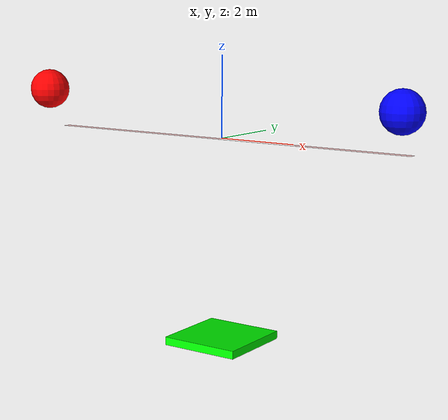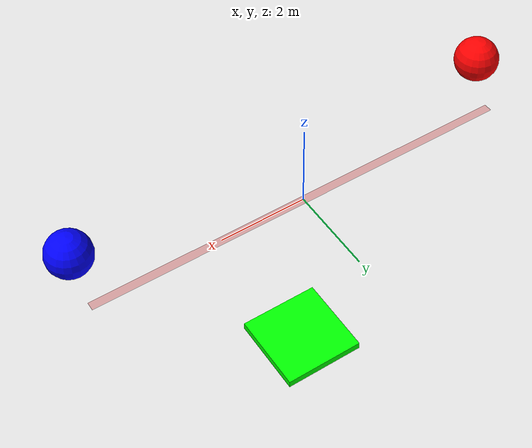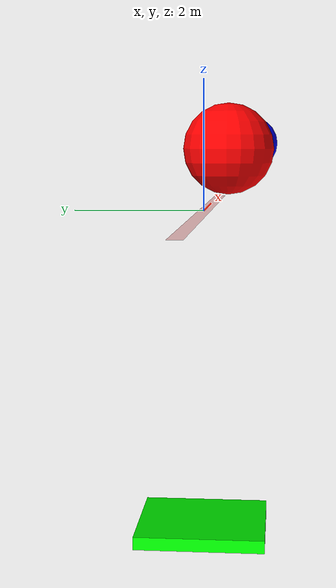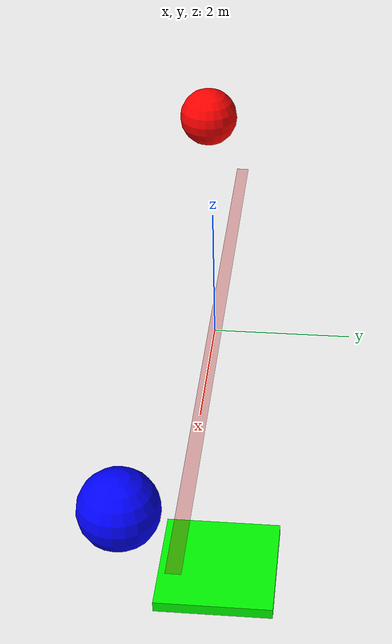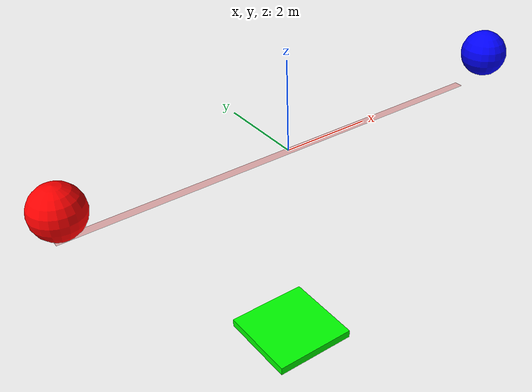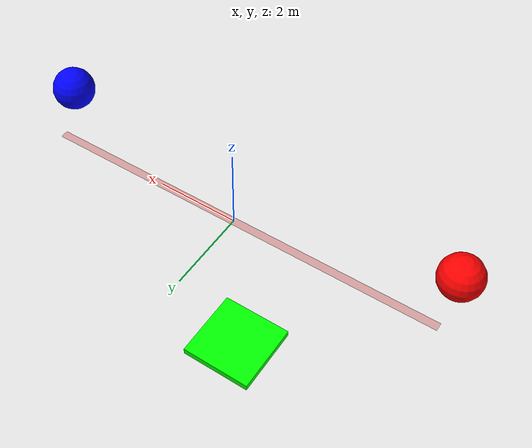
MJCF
<mujoco>
  <option gravity="0 0 -9.81" />
  <worldbody>
    <body name="object_3" pos="0 0 0">
      <geom type="plane" size="5 0.1 10" rgba="0.7 0 0 1" friction="0.2 0.2 0.2" />
    </body>
    <body name="object_4" pos="0 0 -10">
      <geom type="plane" size="30 30 0.1" rgba="0.7 0.7 0.7 1" friction="1 1 1" />
    </body>
    <body name="object_1" pos="-5 -0.6 1">
      <geom type="sphere" size="0.5" density="1" rgba="1 0 0 1" />
      <joint name="object_1_joint" type="free" />
    </body>
    <body name="object_2" pos="5 -0.6 1">
      <geom type="sphere" size="0.5" density="1" rgba="0 0 1 1" />
      <joint name="object_2_joint" type="free" />
    </body>
    <body name="object_5" pos="0 0 -5">
      <geom type="box" size="1 1 0.1" rgba="0 1 0 1" />
    </body>
  </worldbody>
</mujoco>
